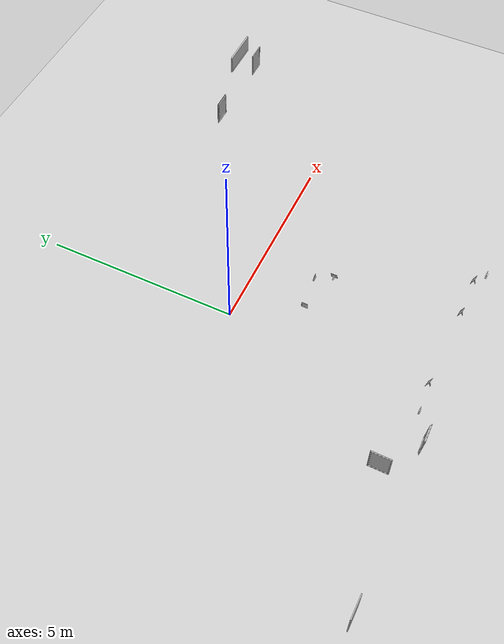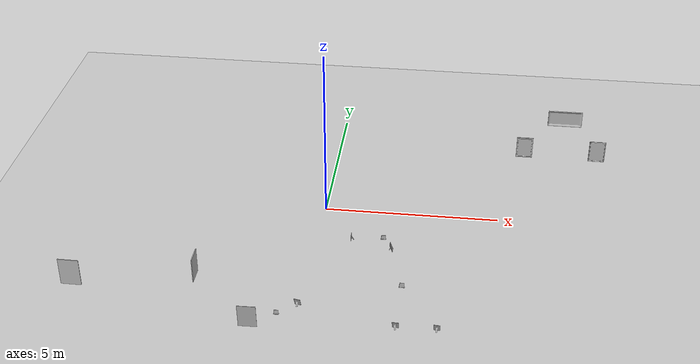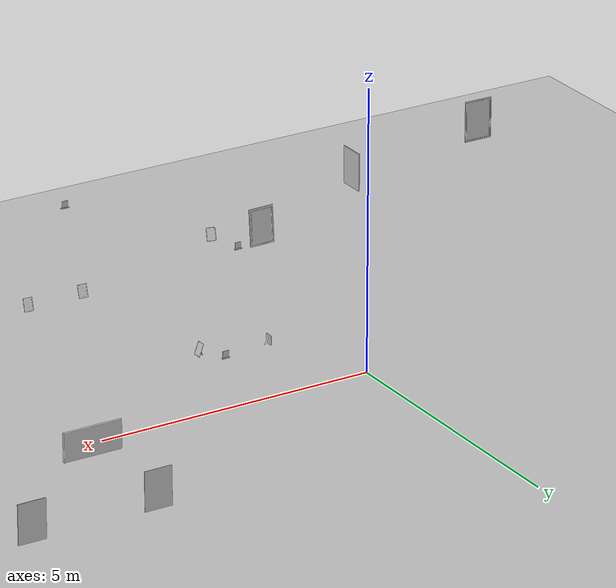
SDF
<sdf version="1.7">
 <world name="default">
  <gravity>0 0 -9.8</gravity>
  <physics type="ode"><max_step_size>0.01</max_step_size><real_time_factor>1</real_time_factor></physics>
  <plugin filename="gz-sim-physics-system" name="gz::sim::systems::Physics"/>
  <plugin filename="gz-sim-user-commands-system" name="gz::sim::systems::UserCommands"/>
  <plugin filename="gz-sim-scene-broadcaster-system" name="gz::sim::systems::SceneBroadcaster"/>
  <plugin filename="gz-sim-sensors-system" name="gz::sim::systems::Sensors">
   <render_engine>ogre2</render_engine>
  </plugin>
  <plugin filename="gz-sim-imu-system" name="gz::sim::systems::Imu"/>
  <model name="ground_plane">
   <static>true</static>
   <link name="link">
    <collision name="collision">
     <geometry><plane><normal>0 0 1</normal><size>200 200</size></plane></geometry>
    </collision>
    <visual name="visual"><geometry><plane><normal>0 0 1</normal><size>200 200</size></plane></geometry></visual>
   </link>
  </model>
  <light type="directional" name="sun">
   <cast_shadows>0</cast_shadows>
   <pose>-5 -3 10 0 0 0</pose>
   <diffuse>1 1 1 1</diffuse>
   <specular>1 1 1 1</specular>
   <direction>0 0 -1</direction>
  </light>
  <include>
   <uri>model://small_house/aws_robomaker_residential_PortraitA_01</uri>
   <name>PortraitA_01</name>
   <pose>-2.712360 -4.817539 1.00000 0 -0 1.566796</pose>
   <static>true</static>
  </include>
  <include>
   <uri>model://small_house/aws_robomaker_residential_PortraitB_01</uri>
   <name>PortraitB_01</name>
   <pose>-1.279683 -5.429630 0.0 -0.076901 0 -3.116718</pose>
   <static>true</static>
  </include>
  <include>
   <uri>model://small_house/aws_robomaker_residential_PortraitB_02</uri>
   <name>PortraitB_02</name>
   <pose>5.737017 3.080310 0.300000 0 -0 0</pose>
   <static>true</static>
  </include>
  <include>
   <uri>model://small_house/aws_robomaker_residential_PortraitA_02</uri>
   <name>PortraitA_02</name>
   <pose>7.937017 3.080310 0.300000 0 -0 3.14</pose>
   <static>true</static>
  </include>
  <include>
   <uri>model://small_house/aws_robomaker_residential_PortraitD_02</uri>
   <name>PortraitD_02</name>
   <pose>6.870181 3.080310 1.488439 0 -0 0</pose>
   <static>true</static>
  </include>
  <include>
   <uri>model://small_house/aws_robomaker_residential_PortraitE_01</uri>
   <name>PortraitE_01</name>
   <pose>-5.773094 -5.492466 1.000000 0 -0 3.132627</pose>
   <static>true</static>
  </include>
  <include>
   <uri>model://small_house/aws_robomaker_residential_DeskPortraitA_01</uri>
   <name>DeskPortraitA_01</name>
   <pose>-0.036864 -5.110156 0.498660 0 -0 2.927784</pose>
   <static>true</static>
  </include>
  <include>
   <uri>model://small_house/aws_robomaker_residential_DeskPortraitA_02</uri>
   <name>DeskPortraitA_02</name>
   <pose>2.046082 -1.892926 0.0703880 -0.018328 -0.000441 1.576216</pose>
   <static>true</static>
  </include>
  <include>
   <uri>model://small_house/aws_robomaker_residential_DeskPortraitC_02</uri>
   <name>DeskPortraitC_02</name>
   <pose>0.964613 -1.586951 0.127676 0.001614 -0.000545 -1.578699</pose>
   <static>true</static>
  </include>
  <include>
   <uri>model://small_house/aws_robomaker_residential_DeskPortraitD_01</uri>
   <name>DeskPortraitD_01</name>
   <pose>2.645560 -5.376225 1.573738 0 -0 -3.112826</pose>
   <static>true</static>
  </include>
  <include>
   <uri>model://small_house/aws_robomaker_residential_DeskPortraitD_02</uri>
   <name>DeskPortraitD_02</name>
   <pose>-0.589211 -5.109890 0.192145 -0.000015 -0.000174 -3.112544</pose>
   <static>true</static>
  </include>
  <include>
   <uri>model://small_house/aws_robomaker_residential_DeskPortraitD_03</uri>
   <name>DeskPortraitD_03</name>
   <pose>1.826729 -1.464881 0.126208 0.000010 0.000006 -3.114380</pose>
   <static>true</static>
  </include>
  <include>
   <uri>model://small_house/aws_robomaker_residential_DeskPortraitB_01</uri>
   <name>DeskPortraitB_01</name>
   <pose>3.547376 -5.083898 -0.012660 -0.336622 -0.000001 3.046741</pose>
   <static>true</static>
  </include>
  <include>
   <uri>model://small_house/aws_robomaker_residential_DeskPortraitB_02</uri>
   <name>DeskPortraitB_02</name>
   <pose>2.486270 -5.102525 -0.012660 -0.336621 0.000000 3.046798</pose>
   <static>true</static>
  </include>
 </world>
</sdf>

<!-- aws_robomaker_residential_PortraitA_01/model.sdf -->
<sdf version="1.6">
  <model name="aws_robomaker_residential_PortraitA_01">
    <link name="link">
      <inertial>
        <mass>1</mass>
      </inertial>
      <collision name="collision">
        <geometry>
          <mesh>
            <uri>meshes/aws_PortraitA_01_collision.DAE</uri>
            <scale>1 1 1</scale>
          </mesh>
        </geometry>
      </collision>
      <visual name="visual">
	    <geometry>
          <mesh>
            <uri>meshes/aws_PortraitA_01_visual.DAE</uri>
          </mesh>
        </geometry>
      <meta> <layer> 2 </layer></meta>
</visual>
    </link>
	<static>1</static>
  </model>
</sdf>

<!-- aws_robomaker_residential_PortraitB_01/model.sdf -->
<sdf version="1.6">
  <model name="aws_robomaker_residential_PortraitB_01">
    <link name="link">
      <inertial>
        <mass>1</mass>
      </inertial>
      <collision name="collision">
        <geometry>
          <mesh>
            <uri>meshes/aws_PortraitB_01_collision.DAE</uri>
            <scale>1 1 1</scale>
          </mesh>
        </geometry>
      </collision>
      <visual name="visual">
	    <geometry>
          <mesh>
            <uri>meshes/aws_PortraitB_01_visual.DAE</uri>
          </mesh>
        </geometry>
      <meta> <layer> 2 </layer></meta>
</visual>
    </link>
	<static>1</static>
  </model>
</sdf>

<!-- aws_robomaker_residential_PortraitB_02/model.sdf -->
<sdf version="1.6">
  <model name="aws_robomaker_residential_PortraitB_02">
    <link name="link">
      <inertial>
        <mass>1</mass>
      </inertial>
      <collision name="collision">
        <geometry>
          <mesh>
            <uri>meshes/aws_PortraitB_01_collision.DAE</uri>
            <scale>1 1 1</scale>
          </mesh>
        </geometry>
      </collision>
      <visual name="visual">
	    <geometry>
          <mesh>
            <uri>meshes/aws_PortraitB_01_visual.DAE</uri>
          </mesh>
        </geometry>
      <meta> <layer> 2 </layer></meta>
</visual>
    </link>
	<static>1</static>
  </model>
</sdf>

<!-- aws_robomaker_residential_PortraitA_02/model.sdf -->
<sdf version="1.6">
  <model name="aws_robomaker_residential_PortraitA_02">
    <link name="link">
      <inertial>
        <mass>1</mass>
      </inertial>
      <collision name="collision">
        <geometry>
          <mesh>
            <uri>meshes/aws_PortraitA_01_collision.DAE</uri>
            <scale>1 1 1</scale>
          </mesh>
        </geometry>
      </collision>
      <visual name="visual">
	    <geometry>
          <mesh>
            <uri>meshes/aws_PortraitA_01_visual.DAE</uri>
          </mesh>
        </geometry>
      <meta> <layer> 2 </layer></meta>
</visual>
    </link>
	<static>1</static>
  </model>
</sdf>

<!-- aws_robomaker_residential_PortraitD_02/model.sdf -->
<sdf version="1.6">
  <model name="aws_robomaker_residential_PortraitD_02">
    <link name="link">

      <inertial>
        <mass>1.5</mass>
      </inertial>

      <collision name="collision">
        <geometry>
          <mesh>
            <uri>meshes/aws_PortraitD_01_collision.DAE</uri>
            <scale>1 1 1</scale>
          </mesh>
        </geometry>

      </collision>

      <visual name="visual">
	    <geometry>
          <mesh>
            <uri>meshes/aws_PortraitD_01_visual.DAE</uri>
          </mesh>
        </geometry>
      <meta> <layer> 2 </layer></meta>
</visual>
    </link>
	<static>1</static>
  </model>
</sdf>

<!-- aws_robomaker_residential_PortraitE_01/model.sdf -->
<sdf version="1.6">
  <model name="aws_robomaker_residential_PortraitE_01">
    <link name="link">
      <inertial>
        <mass>1</mass>
      </inertial>
      <collision name="collision">
        <geometry>
          <mesh>
            <uri>meshes/aws_PortraitE_01_collision.DAE</uri>
            <scale>1 1 1</scale>
          </mesh>
        </geometry>
      </collision>
      <visual name="visual">
	    <geometry>
          <mesh>
            <uri>meshes/aws_PortraitE_01_visual.DAE</uri>
          </mesh>
        </geometry>
      <meta> <layer> 2 </layer></meta>
</visual>
    </link>
	<static>1</static>
  </model>
</sdf>

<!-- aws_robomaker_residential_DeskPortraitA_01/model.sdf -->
<sdf version="1.6">
  <model name="aws_robomaker_residential_DeskPortraitA_01">
    <link name="link">

      <inertial>
        <mass>1</mass>
        <inertia>
            <ixx>0.0835</ixx>
            <ixy>0</ixy>
            <ixz>0</ixz>
            <iyy>0.16</iyy>
            <iyz>0</iyz>
            <izz>0.08347</izz>
        </inertia>
      </inertial>

      <collision name="collision">
        <geometry>
          <mesh>
            <uri>meshes/aws_DeskPortraitA_01_collision.DAE</uri>
            <scale>1 1 1</scale>
          </mesh>
        </geometry>
      </collision>

      <visual name="visual">
	    <geometry>
          <mesh>
            <uri>meshes/aws_DeskPortraitA_01_visual.DAE</uri>
          </mesh>
        </geometry>
      <meta> <layer> 1 </layer></meta>
</visual>
    </link>
  </model>
</sdf>

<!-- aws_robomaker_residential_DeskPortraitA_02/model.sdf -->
<sdf version="1.6">
  <model name="aws_robomaker_residential_DeskPortraitA_02">
    <link name="link">

      <inertial>
        <mass>1</mass>
        <inertia>
            <ixx>0.0835</ixx>
            <ixy>0</ixy>
            <ixz>0</ixz>
            <iyy>0.16</iyy>
            <iyz>0</iyz>
            <izz>0.08347</izz>
        </inertia>
      </inertial>

      <collision name="collision">
        <geometry>
          <mesh>
            <uri>meshes/aws_DeskPortraitA_01_collision.DAE</uri>
            <scale>1 1 1</scale>
          </mesh>
        </geometry>
      </collision>

      <visual name="visual">
	    <geometry>
          <mesh>
            <uri>meshes/aws_DeskPortraitA_01_visual.DAE</uri>
          </mesh>
        </geometry>
      <meta> <layer> 1 </layer></meta>
</visual>
    </link>
  </model>
</sdf>

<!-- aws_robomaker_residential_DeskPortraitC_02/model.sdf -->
<sdf version="1.6">
  <model name="aws_robomaker_residential_DeskPortraitC_02">
    <link name="link">
      <inertial>
        <mass>1</mass>
        <inertia>
            <ixx>0.0835</ixx>
            <ixy>0</ixy>
            <ixz>0</ixz>
            <iyy>0.16</iyy>
            <iyz>0</iyz>
            <izz>0.08347</izz>
        </inertia>
      </inertial>
      <collision name="collision">
        <geometry>
          <mesh>
            <uri>meshes/aws_DeskPortraitC_01_collision.DAE</uri>
            <scale>1 1 1</scale>
          </mesh>
        </geometry>
      </collision>
      <visual name="visual">
	    <geometry>
          <mesh>
            <uri>meshes/aws_DeskPortraitC_01_visual.DAE</uri>
          </mesh>
        </geometry>
      <meta> <layer> 1 </layer></meta>
</visual>
    </link>
  </model>
</sdf>

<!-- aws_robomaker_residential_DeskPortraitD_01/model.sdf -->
<sdf version="1.6">
  <model name="aws_robomaker_residential_DeskPortraitD_01">
    <link name="link">
      <inertial>
        <mass>0.4</mass>
          <inertia>
            <ixx>0.0616</ixx>
            <ixy>0</ixy>
            <ixz>0</ixz>
            <iyy>0.1313</iyy>
            <iyz>0</iyz>
            <izz>0.0803</izz>
          </inertia>
      </inertial>

      <collision name="collision">
        <geometry>
          <mesh>
            <uri>meshes/aws_DeskPortraitD_01_collision.DAE</uri>
            <scale>1 1 1</scale>
          </mesh>
        </geometry>

        <surface>
          <friction>
            <ode>
              <mu>0.7</mu>
              <mu2>0.7</mu2>
            </ode>
          </friction>

          <contact>
            <ode>
              <kd>28500</kd>
            </ode>
          </contact>

        </surface>

      </collision>

      <visual name="visual">
	    <geometry>
          <mesh>
            <uri>meshes/aws_DeskPortraitD_01_visual.DAE</uri>
          </mesh>
        </geometry>
      <meta> <layer> 1 </layer></meta>
</visual>
    </link>
  </model>
</sdf>

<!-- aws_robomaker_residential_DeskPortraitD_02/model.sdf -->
<sdf version="1.6">
  <model name="aws_robomaker_residential_DeskPortraitD_02">
    <link name="link">
      <inertial>
        <mass>0.4</mass>
          <inertia>
            <ixx>0.0616</ixx>
            <ixy>0</ixy>
            <ixz>0</ixz>
            <iyy>0.1313</iyy>
            <iyz>0</iyz>
            <izz>0.0803</izz>
          </inertia>
      </inertial>

      <collision name="collision">
        <geometry>
          <mesh>
            <uri>meshes/aws_DeskPortraitD_01_collision.DAE</uri>
            <scale>1 1 1</scale>
          </mesh>
        </geometry>

        <surface>
          <friction>
            <ode>
              <mu>0.7</mu>
              <mu2>0.7</mu2>
            </ode>
          </friction>

          <contact>
            <ode>
              <kd>28500</kd>
            </ode>
          </contact>

        </surface>

      </collision>

      <visual name="visual">
	    <geometry>
          <mesh>
            <uri>meshes/aws_DeskPortraitD_01_visual.DAE</uri>
          </mesh>
        </geometry>
      <meta> <layer> 1 </layer></meta>
</visual>
    </link>
  </model>
</sdf>

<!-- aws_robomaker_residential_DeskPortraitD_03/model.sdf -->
<sdf version="1.6">
  <model name="aws_robomaker_residential_DeskPortraitD_03">
    <link name="link">
      <inertial>
        <mass>0.4</mass>
          <inertia>
            <ixx>0.0616</ixx>
            <ixy>0</ixy>
            <ixz>0</ixz>
            <iyy>0.1313</iyy>
            <iyz>0</iyz>
            <izz>0.0803</izz>
          </inertia>
      </inertial>

      <collision name="collision">
        <geometry>
          <mesh>
            <uri>meshes/aws_DeskPortraitD_01_collision.DAE</uri>
            <scale>1 1 1</scale>
          </mesh>
        </geometry>

        <surface>
          <friction>
            <ode>
              <mu>0.7</mu>
              <mu2>0.7</mu2>
            </ode>
          </friction>

          <contact>
            <ode>
              <kd>28500</kd>
            </ode>
          </contact>

        </surface>

      </collision>

      <visual name="visual">
	    <geometry>
          <mesh>
            <uri>meshes/aws_DeskPortraitD_01_visual.DAE</uri>
          </mesh>
        </geometry>
      <meta> <layer> 1 </layer></meta>
</visual>
    </link>
  </model>
</sdf>

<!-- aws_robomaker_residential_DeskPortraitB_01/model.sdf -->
<sdf version="1.6">
  <model name="aws_robomaker_residential_DeskPortraitB_01">
    <link name="link">

      <inertial>
        <mass>1</mass>
        <inertia>
            <ixx>0.0135</ixx>
            <ixy>0</ixy>
            <ixz>0</ixz>
            <iyy>0.02</iyy>
            <iyz>0</iyz>
            <izz>0.01347</izz>
        </inertia>
      </inertial>

      <collision name="collision">
        <geometry>
          <mesh>
            <uri>meshes/aws_DeskPortraitB_01_collision.DAE</uri>
            <scale>1 1 1</scale>
          </mesh>
        </geometry>
      </collision>

      <visual name="visual">
	    <geometry>
          <mesh>
            <uri>meshes/aws_DeskPortraitB_01_visual.DAE</uri>
          </mesh>
        </geometry>
      <meta> <layer> 1 </layer></meta>
</visual>
    </link>
  </model>
</sdf>

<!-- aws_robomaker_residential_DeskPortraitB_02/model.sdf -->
<sdf version="1.6">
  <model name="aws_robomaker_residential_DeskPortraitB_02">
    <link name="link">

      <inertial>
        <mass>1</mass>
        <inertia>
            <ixx>0.0135</ixx>
            <ixy>0</ixy>
            <ixz>0</ixz>
            <iyy>0.02</iyy>
            <iyz>0</iyz>
            <izz>0.01347</izz>
        </inertia>
      </inertial>

      <collision name="collision">
        <geometry>
          <mesh>
            <uri>meshes/aws_DeskPortraitB_01_collision.DAE</uri>
            <scale>1 1 1</scale>
          </mesh>
        </geometry>
      </collision>

      <visual name="visual">
	    <geometry>
          <mesh>
            <uri>meshes/aws_DeskPortraitB_01_visual.DAE</uri>
          </mesh>
        </geometry>
      <meta> <layer> 1 </layer></meta>
</visual>
    </link>
  </model>
</sdf>
